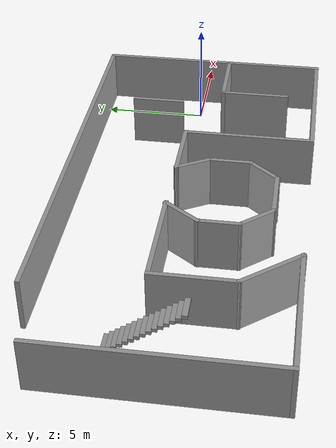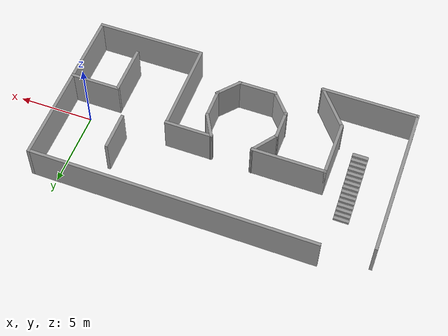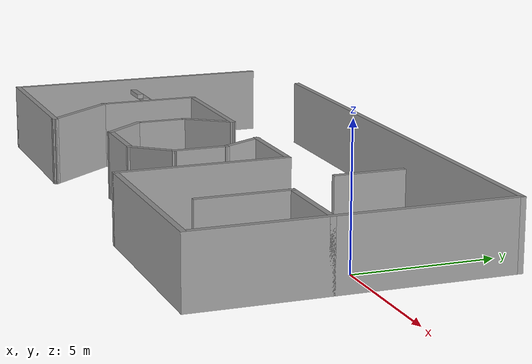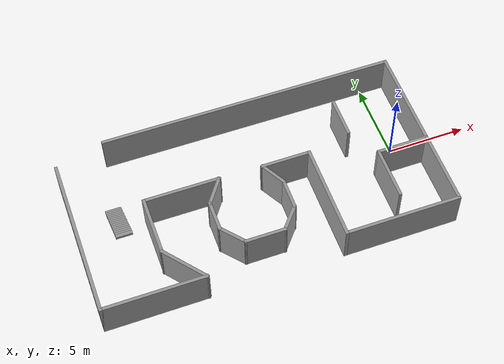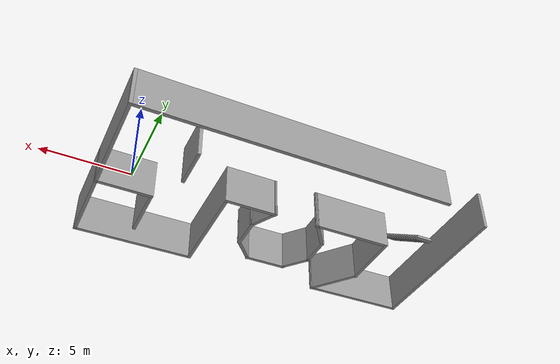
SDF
<?xml version='1.0'?>
<sdf version='1.4'>
  <model name='hexaGal_room'>
    <link name='Stairs_0'>
      <visual name='Stairs_0_Visual_0'>
        <pose>-17.5931 1.57324 0.083333 0 -0 0</pose>
        <geometry>
          <box>
            <size>1 0.233333 0.166667</size>
          </box>
        </geometry>
        <material>
          <script>
            <uri>file://media/materials/scripts/gazebo.material</uri>
            <name>Gazebo/Grey</name>
          </script>
        </material>
      </visual>
      <collision name='Stairs_0_Collision_0'>
        <geometry>
          <box>
            <size>1 0.233333 0.166667</size>
          </box>
        </geometry>
        <pose>-17.5931 1.57324 0.083333 0 -0 0</pose>
      </collision>
      <visual name='Stairs_0_Visual_1'>
        <pose>-17.5931 1.33991 0.25 0 -0 0</pose>
        <geometry>
          <box>
            <size>1 0.233335 0.166668</size>
          </box>
        </geometry>
        <material>
          <script>
            <uri>file://media/materials/scripts/gazebo.material</uri>
            <name>Gazebo/Grey</name>
          </script>
        </material>
      </visual>
      <collision name='Stairs_0_Collision_1'>
        <geometry>
          <box>
            <size>1 0.233335 0.166668</size>
          </box>
        </geometry>
        <pose>-17.5931 1.33991 0.25 0 -0 0</pose>
      </collision>
      <visual name='Stairs_0_Visual_2'>
        <pose>-17.5931 1.10658 0.416667 0 -0 0</pose>
        <geometry>
          <box>
            <size>1 0.233335 0.166668</size>
          </box>
        </geometry>
        <material>
          <script>
            <uri>file://media/materials/scripts/gazebo.material</uri>
            <name>Gazebo/Grey</name>
          </script>
        </material>
      </visual>
      <collision name='Stairs_0_Collision_2'>
        <geometry>
          <box>
            <size>1 0.233335 0.166668</size>
          </box>
        </geometry>
        <pose>-17.5931 1.10658 0.416667 0 -0 0</pose>
      </collision>
      <visual name='Stairs_0_Visual_3'>
        <pose>-17.5931 0.873242 0.583333 0 -0 0</pose>
        <geometry>
          <box>
            <size>1 0.233335 0.166668</size>
          </box>
        </geometry>
        <material>
          <script>
            <uri>file://media/materials/scripts/gazebo.material</uri>
            <name>Gazebo/Grey</name>
          </script>
        </material>
      </visual>
      <collision name='Stairs_0_Collision_3'>
        <geometry>
          <box>
            <size>1 0.233335 0.166668</size>
          </box>
        </geometry>
        <pose>-17.5931 0.873242 0.583333 0 -0 0</pose>
      </collision>
      <visual name='Stairs_0_Visual_4'>
        <pose>-17.5931 0.639909 0.75 0 -0 0</pose>
        <geometry>
          <box>
            <size>1 0.233335 0.166668</size>
          </box>
        </geometry>
        <material>
          <script>
            <uri>file://media/materials/scripts/gazebo.material</uri>
            <name>Gazebo/Grey</name>
          </script>
        </material>
      </visual>
      <collision name='Stairs_0_Collision_4'>
        <geometry>
          <box>
            <size>1 0.233335 0.166668</size>
          </box>
        </geometry>
        <pose>-17.5931 0.639909 0.75 0 -0 0</pose>
      </collision>
      <visual name='Stairs_0_Visual_5'>
        <pose>-17.5931 0.406575 0.916667 0 -0 0</pose>
        <geometry>
          <box>
            <size>1 0.233335 0.166668</size>
          </box>
        </geometry>
        <material>
          <script>
            <uri>file://media/materials/scripts/gazebo.material</uri>
            <name>Gazebo/Grey</name>
          </script>
        </material>
      </visual>
      <collision name='Stairs_0_Collision_5'>
        <geometry>
          <box>
            <size>1 0.233335 0.166668</size>
          </box>
        </geometry>
        <pose>-17.5931 0.406575 0.916667 0 -0 0</pose>
      </collision>
      <visual name='Stairs_0_Visual_6'>
        <pose>-17.5931 0.173242 1.08333 0 -0 0</pose>
        <geometry>
          <box>
            <size>1 0.233335 0.166668</size>
          </box>
        </geometry>
        <material>
          <script>
            <uri>file://media/materials/scripts/gazebo.material</uri>
            <name>Gazebo/Grey</name>
          </script>
        </material>
      </visual>
      <collision name='Stairs_0_Collision_6'>
        <geometry>
          <box>
            <size>1 0.233335 0.166668</size>
          </box>
        </geometry>
        <pose>-17.5931 0.173242 1.08333 0 -0 0</pose>
      </collision>
      <visual name='Stairs_0_Visual_7'>
        <pose>-17.5931 -0.060091 1.25 0 -0 0</pose>
        <geometry>
          <box>
            <size>1 0.233335 0.166668</size>
          </box>
        </geometry>
        <material>
          <script>
            <uri>file://media/materials/scripts/gazebo.material</uri>
            <name>Gazebo/Grey</name>
          </script>
        </material>
      </visual>
      <collision name='Stairs_0_Collision_7'>
        <geometry>
          <box>
            <size>1 0.233335 0.166668</size>
          </box>
        </geometry>
        <pose>-17.5931 -0.060091 1.25 0 -0 0</pose>
      </collision>
      <visual name='Stairs_0_Visual_8'>
        <pose>-17.5931 -0.293425 1.41667 0 -0 0</pose>
        <geometry>
          <box>
            <size>1 0.233335 0.166668</size>
          </box>
        </geometry>
        <material>
          <script>
            <uri>file://media/materials/scripts/gazebo.material</uri>
            <name>Gazebo/Grey</name>
          </script>
        </material>
      </visual>
      <collision name='Stairs_0_Collision_8'>
        <geometry>
          <box>
            <size>1 0.233335 0.166668</size>
          </box>
        </geometry>
        <pose>-17.5931 -0.293425 1.41667 0 -0 0</pose>
      </collision>
      <visual name='Stairs_0_Visual_9'>
        <pose>-17.5931 -0.526758 1.58333 0 -0 0</pose>
        <geometry>
          <box>
            <size>1 0.233335 0.166668</size>
          </box>
        </geometry>
        <material>
          <script>
            <uri>file://media/materials/scripts/gazebo.material</uri>
            <name>Gazebo/Grey</name>
          </script>
        </material>
      </visual>
      <collision name='Stairs_0_Collision_9'>
        <geometry>
          <box>
            <size>1 0.233335 0.166668</size>
          </box>
        </geometry>
        <pose>-17.5931 -0.526758 1.58333 0 -0 0</pose>
      </collision>
      <visual name='Stairs_0_Visual_10'>
        <pose>-17.5931 -0.760091 1.75 0 -0 0</pose>
        <geometry>
          <box>
            <size>1 0.233335 0.166668</size>
          </box>
        </geometry>
        <material>
          <script>
            <uri>file://media/materials/scripts/gazebo.material</uri>
            <name>Gazebo/Grey</name>
          </script>
        </material>
      </visual>
      <collision name='Stairs_0_Collision_10'>
        <geometry>
          <box>
            <size>1 0.233335 0.166668</size>
          </box>
        </geometry>
        <pose>-17.5931 -0.760091 1.75 0 -0 0</pose>
      </collision>
      <visual name='Stairs_0_Visual_11'>
        <pose>-17.5931 -0.993425 1.91667 0 -0 0</pose>
        <geometry>
          <box>
            <size>1 0.233335 0.166668</size>
          </box>
        </geometry>
        <material>
          <script>
            <uri>file://media/materials/scripts/gazebo.material</uri>
            <name>Gazebo/Grey</name>
          </script>
        </material>
      </visual>
      <collision name='Stairs_0_Collision_11'>
        <geometry>
          <box>
            <size>1 0.233335 0.166668</size>
          </box>
        </geometry>
        <pose>-17.5931 -0.993425 1.91667 0 -0 0</pose>
      </collision>
      <visual name='Stairs_0_Visual_12'>
        <pose>-17.5931 -1.22676 2.08333 0 -0 0</pose>
        <geometry>
          <box>
            <size>1 0.233335 0.166668</size>
          </box>
        </geometry>
        <material>
          <script>
            <uri>file://media/materials/scripts/gazebo.material</uri>
            <name>Gazebo/Grey</name>
          </script>
        </material>
      </visual>
      <collision name='Stairs_0_Collision_12'>
        <geometry>
          <box>
            <size>1 0.233335 0.166668</size>
          </box>
        </geometry>
        <pose>-17.5931 -1.22676 2.08333 0 -0 0</pose>
      </collision>
      <visual name='Stairs_0_Visual_13'>
        <pose>-17.5931 -1.46009 2.25 0 -0 0</pose>
        <geometry>
          <box>
            <size>1 0.233335 0.166668</size>
          </box>
        </geometry>
        <material>
          <script>
            <uri>file://media/materials/scripts/gazebo.material</uri>
            <name>Gazebo/Grey</name>
          </script>
        </material>
      </visual>
      <collision name='Stairs_0_Collision_13'>
        <geometry>
          <box>
            <size>1 0.233335 0.166668</size>
          </box>
        </geometry>
        <pose>-17.5931 -1.46009 2.25 0 -0 0</pose>
      </collision>
      <visual name='Stairs_0_Visual_14'>
        <pose>-17.5931 -1.69342 2.41667 0 -0 0</pose>
        <geometry>
          <box>
            <size>1 0.233335 0.166668</size>
          </box>
        </geometry>
        <material>
          <script>
            <uri>file://media/materials/scripts/gazebo.material</uri>
            <name>Gazebo/Grey</name>
          </script>
        </material>
      </visual>
      <collision name='Stairs_0_Collision_14'>
        <geometry>
          <box>
            <size>1 0.233335 0.166668</size>
          </box>
        </geometry>
        <pose>-17.5931 -1.69342 2.41667 0 -0 0</pose>
      </collision>
    </link>
    <link name='Wall_10'>
      <collision name='Wall_10_Collision'>
        <geometry>
          <box>
            <size>2.01909 0.2 2.5</size>
          </box>
        </geometry>
        <pose>0 0 1.25 0 -0 0</pose>
      </collision>
      <visual name='Wall_10_Visual'>
        <pose>0 0 1.25 0 -0 0</pose>
        <geometry>
          <box>
            <size>2.01909 0.2 2.5</size>
          </box>
        </geometry>
        <material>
          <script>
            <uri>file://media/materials/scripts/gazebo.material</uri>
            <name>Gazebo/Grey</name>
          </script>
        </material>
      </visual>
      <velocity_decay>
        <linear>0</linear>
        <angular>0</angular>
      </velocity_decay>
      <pose>-12.2964 -2.3072 0 0 0 -1.5708</pose>
    </link>
    <link name='Wall_11'>
      <collision name='Wall_11_Collision'>
        <geometry>
          <box>
            <size>1.94684 0.2 2.5</size>
          </box>
        </geometry>
        <pose>0 0 1.25 0 -0 0</pose>
      </collision>
      <visual name='Wall_11_Visual'>
        <pose>0 0 1.25 0 -0 0</pose>
        <geometry>
          <box>
            <size>1.94684 0.2 2.5</size>
          </box>
        </geometry>
        <material>
          <script>
            <uri>file://media/materials/scripts/gazebo.material</uri>
            <name>Gazebo/Grey</name>
          </script>
        </material>
      </visual>
      <velocity_decay>
        <linear>0</linear>
        <angular>0</angular>
      </velocity_decay>
      <pose>-11.7346 -3.88552 0 0 0 -0.872137</pose>
    </link>
    <link name='Wall_12'>
      <collision name='Wall_12_Collision'>
        <geometry>
          <box>
            <size>2.60761 0.2 2.5</size>
          </box>
        </geometry>
        <pose>0 0 1.25 0 -0 0</pose>
      </collision>
      <visual name='Wall_12_Visual'>
        <pose>0 0 1.25 0 -0 0</pose>
        <geometry>
          <box>
            <size>2.60761 0.2 2.5</size>
          </box>
        </geometry>
        <material>
          <script>
            <uri>file://media/materials/scripts/gazebo.material</uri>
            <name>Gazebo/Grey</name>
          </script>
        </material>
      </visual>
      <velocity_decay>
        <linear>0</linear>
        <angular>0</angular>
      </velocity_decay>
      <pose>-9.96904 -4.5543 0 0 -0 0</pose>
    </link>
    <link name='Wall_13'>
      <collision name='Wall_13_Collision'>
        <geometry>
          <box>
            <size>1.87147 0.2 2.5</size>
          </box>
        </geometry>
        <pose>0 0 1.25 0 -0 0</pose>
      </collision>
      <visual name='Wall_13_Visual'>
        <pose>0 0 1.25 0 -0 0</pose>
        <geometry>
          <box>
            <size>1.87147 0.2 2.5</size>
          </box>
        </geometry>
        <material>
          <script>
            <uri>file://media/materials/scripts/gazebo.material</uri>
            <name>Gazebo/Grey</name>
          </script>
        </material>
      </visual>
      <velocity_decay>
        <linear>0</linear>
        <angular>0</angular>
      </velocity_decay>
      <pose>-8.23021 -3.91227 0 0 -0 0.876058</pose>
    </link>
    <link name='Wall_14'>
      <collision name='Wall_14_Collision'>
        <geometry>
          <box>
            <size>2.07259 0.2 2.5</size>
          </box>
        </geometry>
        <pose>0 0 1.25 0 -0 0</pose>
      </collision>
      <visual name='Wall_14_Visual'>
        <pose>0 0 1.25 0 -0 0</pose>
        <geometry>
          <box>
            <size>2.07259 0.2 2.5</size>
          </box>
        </geometry>
        <material>
          <script>
            <uri>file://media/materials/scripts/gazebo.material</uri>
            <name>Gazebo/Grey</name>
          </script>
        </material>
      </visual>
      <velocity_decay>
        <linear>0</linear>
        <angular>0</angular>
      </velocity_decay>
      <pose>-7.69518 -2.33395 0 0 -0 1.5708</pose>
    </link>
    <link name='Wall_15'>
      <collision name='Wall_15_Collision'>
        <geometry>
          <box>
            <size>1.85253 0.2 2.5</size>
          </box>
        </geometry>
        <pose>0 0 1.25 0 -0 0</pose>
      </collision>
      <visual name='Wall_15_Visual'>
        <pose>0 0 1.25 0 -0 0</pose>
        <geometry>
          <box>
            <size>1.85253 0.2 2.5</size>
          </box>
        </geometry>
        <material>
          <script>
            <uri>file://media/materials/scripts/gazebo.material</uri>
            <name>Gazebo/Grey</name>
          </script>
        </material>
      </visual>
      <velocity_decay>
        <linear>0</linear>
        <angular>0</angular>
      </velocity_decay>
      <pose>-8.09645 -0.67537 0 0 -0 2.07789</pose>
    </link>
    <link name='Wall_16'>
      <collision name='Wall_16_Collision'>
        <geometry>
          <box>
            <size>3.19614 0.2 2.5</size>
          </box>
        </geometry>
        <pose>0 0 1.25 0 -0 0</pose>
      </collision>
      <visual name='Wall_16_Visual'>
        <pose>0 0 1.25 0 -0 0</pose>
        <geometry>
          <box>
            <size>3.19614 0.2 2.5</size>
          </box>
        </geometry>
        <material>
          <script>
            <uri>file://media/materials/scripts/gazebo.material</uri>
            <name>Gazebo/Grey</name>
          </script>
        </material>
      </visual>
      <velocity_decay>
        <linear>0</linear>
        <angular>0</angular>
      </velocity_decay>
      <pose>-6.99965 0.046914 0 0 -0 0</pose>
    </link>
    <link name='Wall_17'>
      <collision name='Wall_17_Collision'>
        <geometry>
          <box>
            <size>6.24578 0.2 2.5</size>
          </box>
        </geometry>
        <pose>0 0 1.25 0 -0 0</pose>
      </collision>
      <visual name='Wall_17_Visual'>
        <pose>0 0 1.25 0 -0 0</pose>
        <geometry>
          <box>
            <size>6.24578 0.2 2.5</size>
          </box>
        </geometry>
        <material>
          <script>
            <uri>file://media/materials/scripts/gazebo.material</uri>
            <name>Gazebo/Grey</name>
          </script>
        </material>
      </visual>
      <velocity_decay>
        <linear>0</linear>
        <angular>0</angular>
      </velocity_decay>
      <pose>-5.50158 -2.97598 0 0 0 -1.5708</pose>
    </link>
    <link name='Wall_18'>
      <collision name='Wall_18_Collision'>
        <geometry>
          <box>
            <size>7.31583 0.2 2.5</size>
          </box>
        </geometry>
        <pose>0 0 1.25 0 -0 0</pose>
      </collision>
      <visual name='Wall_18_Visual'>
        <pose>0 0 1.25 0 -0 0</pose>
        <geometry>
          <box>
            <size>7.31583 0.2 2.5</size>
          </box>
        </geometry>
        <material>
          <script>
            <uri>file://media/materials/scripts/gazebo.material</uri>
            <name>Gazebo/Grey</name>
          </script>
        </material>
      </visual>
      <velocity_decay>
        <linear>0</linear>
        <angular>0</angular>
      </velocity_decay>
      <pose>-1.94366 -5.99887 0 0 -0 0</pose>
    </link>
    <link name='Wall_19'>
      <collision name='Wall_19_Collision'>
        <geometry>
          <box>
            <size>11.2215 0.2 2.5</size>
          </box>
        </geometry>
        <pose>0 0 1.25 0 -0 0</pose>
      </collision>
      <visual name='Wall_19_Visual'>
        <pose>0 0 1.25 0 -0 0</pose>
        <geometry>
          <box>
            <size>11.2215 0.2 2.5</size>
          </box>
        </geometry>
        <material>
          <script>
            <uri>file://media/materials/scripts/gazebo.material</uri>
            <name>Gazebo/Grey</name>
          </script>
        </material>
      </visual>
      <velocity_decay>
        <linear>0</linear>
        <angular>0</angular>
      </velocity_decay>
      <pose>1.61425 -0.488111 0 0 -0 1.5708</pose>
    </link>
    <link name='Wall_20'>
      <collision name='Wall_20_Collision'>
        <geometry>
          <box>
            <size>18.8189 0.2 2.5</size>
          </box>
        </geometry>
        <pose>0 0 1.25 0 -0 0</pose>
      </collision>
      <visual name='Wall_20_Visual'>
        <pose>0 0 1.25 0 -0 0</pose>
        <geometry>
          <box>
            <size>18.8189 0.2 2.5</size>
          </box>
        </geometry>
        <material>
          <script>
            <uri>file://media/materials/scripts/gazebo.material</uri>
            <name>Gazebo/Grey</name>
          </script>
        </material>
      </visual>
      <velocity_decay>
        <linear>0</linear>
        <angular>0</angular>
      </velocity_decay>
      <pose>-7.69518 5.02265 0 0 -0 3.14159</pose>
    </link>
    <link name='Wall_22'>
      <collision name='Wall_22_Collision'>
        <geometry>
          <box>
            <size>2.55411 0.2 2.5</size>
          </box>
        </geometry>
        <pose>0 0 1.25 0 -0 0</pose>
      </collision>
      <visual name='Wall_22_Visual'>
        <pose>0 0 1.25 0 -0 0</pose>
        <geometry>
          <box>
            <size>2.55411 0.2 2.5</size>
          </box>
        </geometry>
        <material>
          <script>
            <uri>file://media/materials/scripts/gazebo.material</uri>
            <name>Gazebo/Grey</name>
          </script>
        </material>
      </visual>
      <velocity_decay>
        <linear>0</linear>
        <angular>0</angular>
      </velocity_decay>
      <pose>-2.71945 1.8125 0 0 -0 1.5708</pose>
    </link>
    <link name='Wall_24'>
      <collision name='Wall_24_Collision'>
        <geometry>
          <box>
            <size>3.35665 0.2 2.5</size>
          </box>
        </geometry>
        <pose>0 0 1.25 0 -0 0</pose>
      </collision>
      <visual name='Wall_24_Visual'>
        <pose>0 0 1.25 0 -0 0</pose>
        <geometry>
          <box>
            <size>3.35665 0.2 2.5</size>
          </box>
        </geometry>
        <material>
          <script>
            <uri>file://media/materials/scripts/gazebo.material</uri>
            <name>Gazebo/Grey</name>
          </script>
        </material>
      </visual>
      <velocity_decay>
        <linear>0</linear>
        <angular>0</angular>
      </velocity_decay>
      <pose>0.035931 -1.34415 0 0 -0 3.14159</pose>
    </link>
    <link name='Wall_25'>
      <collision name='Wall_25_Collision'>
        <geometry>
          <box>
            <size>3.41015 0.2 2.5</size>
          </box>
        </geometry>
        <pose>0 0 1.25 0 -0 0</pose>
      </collision>
      <visual name='Wall_25_Visual'>
        <pose>0 0 1.25 0 -0 0</pose>
        <geometry>
          <box>
            <size>3.41015 0.2 2.5</size>
          </box>
        </geometry>
        <material>
          <script>
            <uri>file://media/materials/scripts/gazebo.material</uri>
            <name>Gazebo/Grey</name>
          </script>
        </material>
      </visual>
      <velocity_decay>
        <linear>0</linear>
        <angular>0</angular>
      </velocity_decay>
      <pose>-1.54239 -2.94923 0 0 0 -1.5708</pose>
    </link>
    <link name='Wall_4'>
      <collision name='Wall_4_Collision'>
        <geometry>
          <box>
            <size>10.2607 0.2 2.5</size>
          </box>
        </geometry>
        <pose>0 0 1.25 0 -0 0</pose>
      </collision>
      <visual name='Wall_4_Visual'>
        <pose>0 0 1.25 0 -0 0</pose>
        <geometry>
          <box>
            <size>10.2607 0.2 2.5</size>
          </box>
        </geometry>
        <material>
          <script>
            <uri>file://media/materials/scripts/gazebo.material</uri>
            <name>Gazebo/Grey</name>
          </script>
        </material>
      </visual>
      <velocity_decay>
        <linear>0</linear>
        <angular>0</angular>
      </velocity_decay>
      <pose>-20.156 -0.91502 0 0 0 -1.5708</pose>
    </link>
    <link name='Wall_5'>
      <collision name='Wall_5_Collision'>
        <geometry>
          <box>
            <size>6.40106 0.2 2.5</size>
          </box>
        </geometry>
        <pose>0 0 1.25 0 -0 0</pose>
      </collision>
      <visual name='Wall_5_Visual'>
        <pose>0 0 1.25 0 -0 0</pose>
        <geometry>
          <box>
            <size>6.40106 0.2 2.5</size>
          </box>
        </geometry>
        <material>
          <script>
            <uri>file://media/materials/scripts/gazebo.material</uri>
            <name>Gazebo/Grey</name>
          </script>
        </material>
      </visual>
      <velocity_decay>
        <linear>0</linear>
        <angular>0</angular>
      </velocity_decay>
      <pose>-17.0555 -5.94537 0 0 -0 0</pose>
    </link>
    <link name='Wall_6'>
      <collision name='Wall_6_Collision'>
        <geometry>
          <box>
            <size>3.28325 0.2 2.5</size>
          </box>
        </geometry>
        <pose>0 0 1.25 0 -0 0</pose>
      </collision>
      <visual name='Wall_6_Visual'>
        <pose>0 0 1.25 0 -0 0</pose>
        <geometry>
          <box>
            <size>3.28325 0.2 2.5</size>
          </box>
        </geometry>
        <material>
          <script>
            <uri>file://media/materials/scripts/gazebo.material</uri>
            <name>Gazebo/Grey</name>
          </script>
        </material>
      </visual>
      <velocity_decay>
        <linear>0</linear>
        <angular>0</angular>
      </velocity_decay>
      <pose>-14.918 -4.74156 0 0 -0 2.24554</pose>
    </link>
    <link name='Wall_7'>
      <collision name='Wall_7_Collision'>
        <geometry>
          <box>
            <size>3.83817 0.2 2.5</size>
          </box>
        </geometry>
        <pose>0 0 1.25 0 -0 0</pose>
      </collision>
      <visual name='Wall_7_Visual'>
        <pose>0 0 1.25 0 -0 0</pose>
        <geometry>
          <box>
            <size>3.83817 0.2 2.5</size>
          </box>
        </geometry>
        <material>
          <script>
            <uri>file://media/materials/scripts/gazebo.material</uri>
            <name>Gazebo/Grey</name>
          </script>
        </material>
      </visual>
      <velocity_decay>
        <linear>0</linear>
        <angular>0</angular>
      </velocity_decay>
      <pose>-15.8811 -1.71867 0 0 -0 1.5708</pose>
    </link>
    <link name='Wall_8'>
      <collision name='Wall_8_Collision'>
        <geometry>
          <box>
            <size>4.85472 0.2 2.5</size>
          </box>
        </geometry>
        <pose>0 0 1.25 0 -0 0</pose>
      </collision>
      <visual name='Wall_8_Visual'>
        <pose>0 0 1.25 0 -0 0</pose>
        <geometry>
          <box>
            <size>4.85472 0.2 2.5</size>
          </box>
        </geometry>
        <material>
          <script>
            <uri>file://media/materials/scripts/gazebo.material</uri>
            <name>Gazebo/Grey</name>
          </script>
        </material>
      </visual>
      <velocity_decay>
        <linear>0</linear>
        <angular>0</angular>
      </velocity_decay>
      <pose>-13.5537 0.100416 0 0 -0 0</pose>
    </link>
    <link name='Wall_9'>
      <collision name='Wall_9_Collision'>
        <geometry>
          <box>
            <size>2.04098 0.2 2.5</size>
          </box>
        </geometry>
        <pose>0 0 1.25 0 -0 0</pose>
      </collision>
      <visual name='Wall_9_Visual'>
        <pose>0 0 1.25 0 -0 0</pose>
        <geometry>
          <box>
            <size>2.04098 0.2 2.5</size>
          </box>
        </geometry>
        <material>
          <script>
            <uri>file://media/materials/scripts/gazebo.material</uri>
            <name>Gazebo/Grey</name>
          </script>
        </material>
      </visual>
      <velocity_decay>
        <linear>0</linear>
        <angular>0</angular>
      </velocity_decay>
      <pose>-11.7614 -0.648619 0 0 0 -2.19105</pose>
    </link>
    <static>1</static>
  </model>
</sdf>
